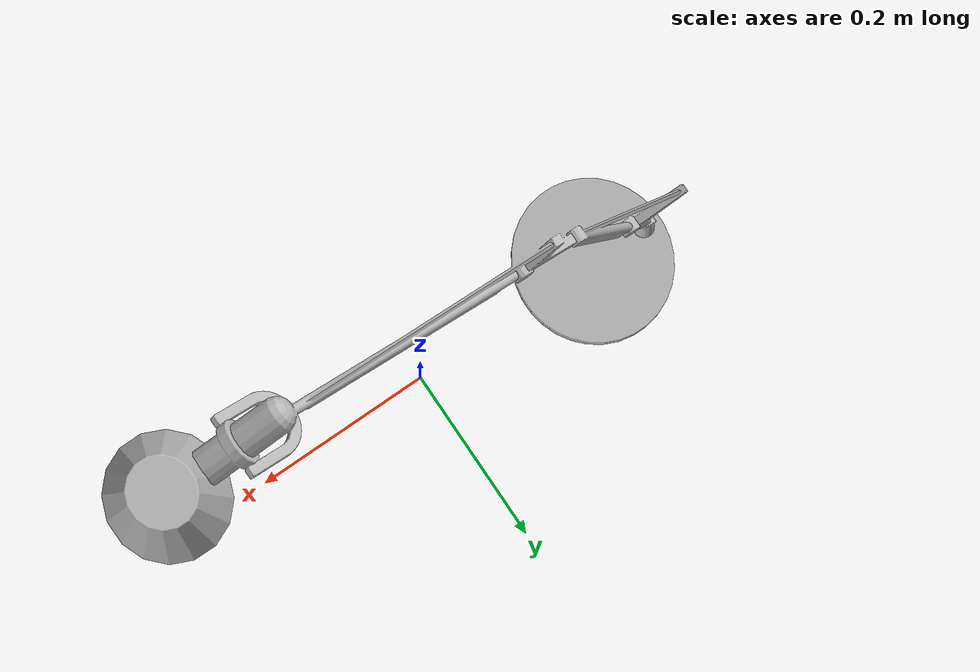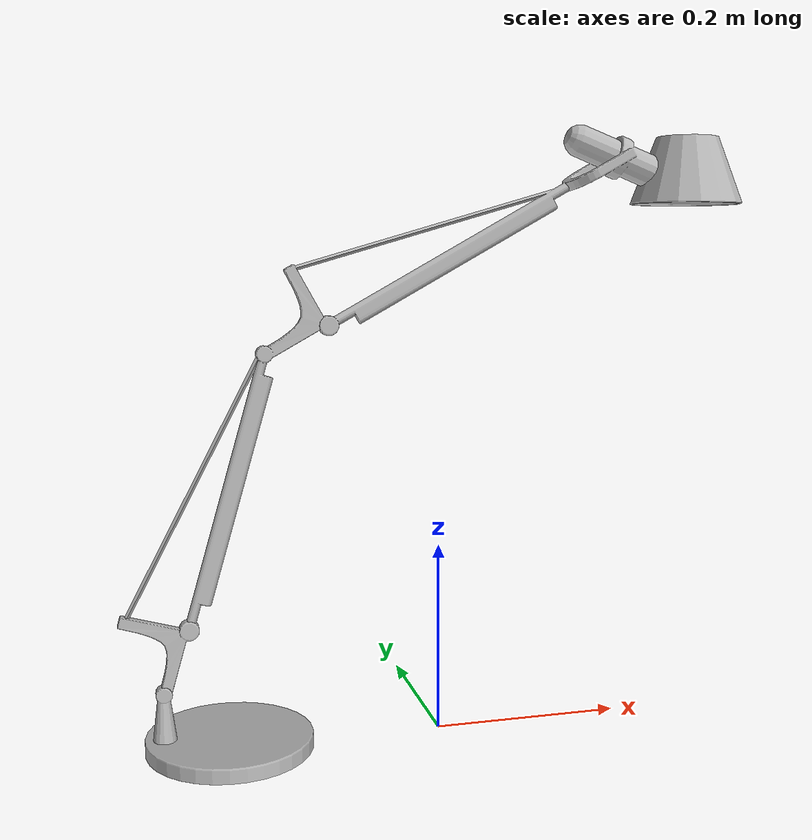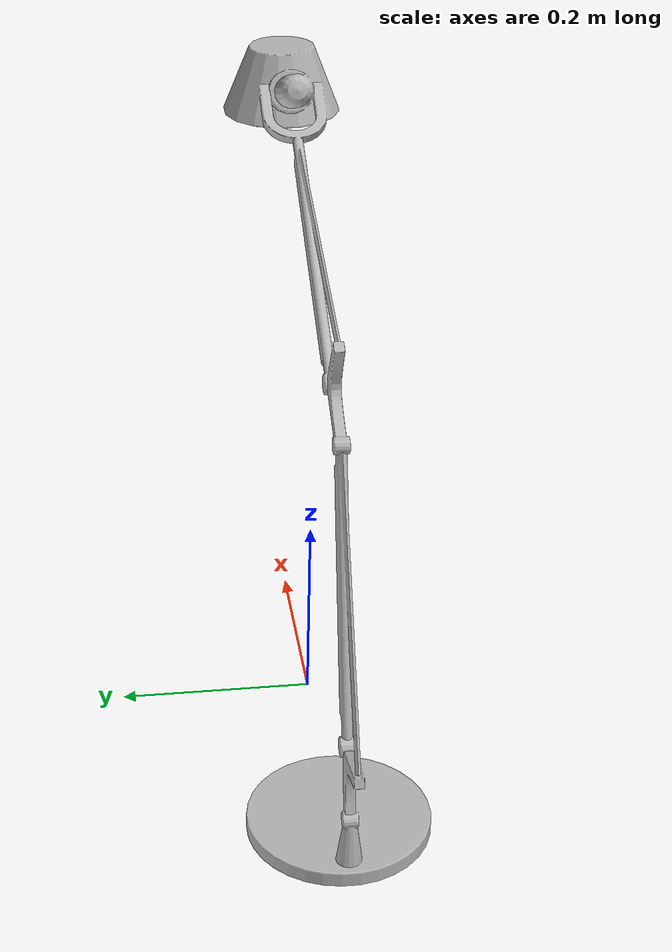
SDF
<?xml version='1.0'?>
<sdf version='1.4'>
  <model name='515'>
    <pose>0 0 0 0 0 0</pose>
    <static>true</static>
    <link name='link'>
      <collision name='collision'>
        <pose>0 0 0 0 0 0</pose>
        <geometry>
          <box>
            <size>0.659706 0.179881 2</size>
          </box>
        </geometry>
      </collision>
      <visual name='visual'>
        <pose>0 0 0 0 0 0</pose>
        <geometry>
          <mesh><uri>model://515/515.dae</uri></mesh>
        </geometry>
      </visual>
    </link>
  </model>
</sdf>
